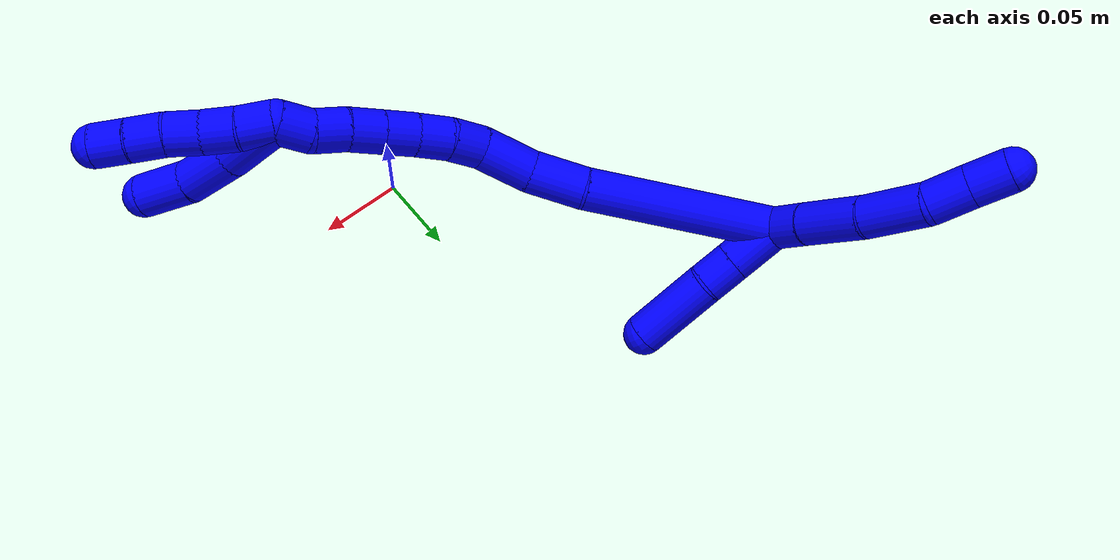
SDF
<sdf version="1.7">
 <world name="default">
  <model name="1">
   <static>0</static>
   <link name="1">
    <collision name="collision-cylinder-e_1_2_8">
     <pose>0.00226 0.003421 0.011406 -0.291426 0.187548 -0.027603</pose>
     <geometry><cylinder><radius>0.0125</radius><length>0.02424</length></cylinder></geometry>
     <surface>
      <friction><ode><mu>1.16</mu><mu2>1.16</mu2><slip1>0</slip1><slip2>0</slip2></ode></friction>
      <contact><ode><kp>1e+06</kp><kd>1</kd><max_vel>0</max_vel><min_depth>0.001</min_depth></ode></contact>
     </surface>
    </collision>
    <visual name="visual-cylinder-e_1_2_8">
     <pose>0.00226 0.003421 0.011406 -0.291426 0.187548 -0.027603</pose>
     <geometry><cylinder><radius>0.0125</radius><length>0.02424</length></cylinder></geometry>
     <material><ambient>0 0 1 1</ambient></material>
    </visual>
    <collision name="collision-cylinder-e_2_8_9">
     <pose>0.006936 0.01257 0.041662 -0.294959 0.12202 -0.018149</pose>
     <geometry><cylinder><radius>0.0125</radius><length>0.039698</length></cylinder></geometry>
     <surface>
      <friction><ode><mu>1.16</mu><mu2>1.16</mu2><slip1>0</slip1><slip2>0</slip2></ode></friction>
      <contact><ode><kp>1e+06</kp><kd>1</kd><max_vel>0</max_vel><min_depth>0.001</min_depth></ode></contact>
     </surface>
    </collision>
    <visual name="visual-cylinder-e_2_8_9">
     <pose>0.006936 0.01257 0.041662 -0.294959 0.12202 -0.018149</pose>
     <geometry><cylinder><radius>0.0125</radius><length>0.039698</length></cylinder></geometry>
     <material><ambient>0 0 1 1</ambient></material>
    </visual>
    <collision name="collision-cylinder-e_3_9_10">
     <pose>0.009455 0.022124 0.079303 -0.200947 0.005383 -0.000543</pose>
     <geometry><cylinder><radius>0.0125</radius><length>0.038353</length></cylinder></geometry>
     <surface>
      <friction><ode><mu>1.16</mu><mu2>1.16</mu2><slip1>0</slip1><slip2>0</slip2></ode></friction>
      <contact><ode><kp>1e+06</kp><kd>1</kd><max_vel>0</max_vel><min_depth>0.001</min_depth></ode></contact>
     </surface>
    </collision>
    <visual name="visual-cylinder-e_3_9_10">
     <pose>0.009455 0.022124 0.079303 -0.200947 0.005383 -0.000543</pose>
     <geometry><cylinder><radius>0.0125</radius><length>0.038353</length></cylinder></geometry>
     <material><ambient>0 0 1 1</ambient></material>
    </visual>
    <collision name="collision-cylinder-e_4_10_11">
     <pose>0.006926 0.025656 0.110028 0.024785 -0.216944 -0.002699</pose>
     <geometry><cylinder><radius>0.0125</radius><length>0.024451</length></cylinder></geometry>
     <surface>
      <friction><ode><mu>1.16</mu><mu2>1.16</mu2><slip1>0</slip1><slip2>0</slip2></ode></friction>
      <contact><ode><kp>1e+06</kp><kd>1</kd><max_vel>0</max_vel><min_depth>0.001</min_depth></ode></contact>
     </surface>
    </collision>
    <visual name="visual-cylinder-e_4_10_11">
     <pose>0.006926 0.025656 0.110028 0.024785 -0.216944 -0.002699</pose>
     <geometry><cylinder><radius>0.0125</radius><length>0.024451</length></cylinder></geometry>
     <material><ambient>0 0 1 1</ambient></material>
    </visual>
    <collision name="collision-cylinder-e_5_11_6">
     <pose>0.002055 0.025388 0.133375 -0.00246 -0.193798 0.000239</pose>
     <geometry><cylinder><radius>0.0125</radius><length>0.023257</length></cylinder></geometry>
     <surface>
      <friction><ode><mu>1.16</mu><mu2>1.16</mu2><slip1>0</slip1><slip2>0</slip2></ode></friction>
      <contact><ode><kp>1e+06</kp><kd>1</kd><max_vel>0</max_vel><min_depth>0.001</min_depth></ode></contact>
     </surface>
    </collision>
    <visual name="visual-cylinder-e_5_11_6">
     <pose>0.002055 0.025388 0.133375 -0.00246 -0.193798 0.000239</pose>
     <geometry><cylinder><radius>0.0125</radius><length>0.023257</length></cylinder></geometry>
     <material><ambient>0 0 1 1</ambient></material>
    </visual>
    <collision name="collision-cylinder-e_1_2_12">
     <pose>0.005718 0.005351 -0.013522 -2.76478 0.374634 -1.56485</pose>
     <geometry><cylinder><radius>0.0125</radius><length>0.031251</length></cylinder></geometry>
     <surface>
      <friction><ode><mu>1.16</mu><mu2>1.16</mu2><slip1>0</slip1><slip2>0</slip2></ode></friction>
      <contact><ode><kp>1e+06</kp><kd>1</kd><max_vel>0</max_vel><min_depth>0.001</min_depth></ode></contact>
     </surface>
    </collision>
    <visual name="visual-cylinder-e_1_2_12">
     <pose>0.005718 0.005351 -0.013522 -2.76478 0.374634 -1.56485</pose>
     <geometry><cylinder><radius>0.0125</radius><length>0.031251</length></cylinder></geometry>
     <material><ambient>0 0 1 1</ambient></material>
    </visual>
    <collision name="collision-cylinder-e_2_12_13">
     <pose>0.01517 0.014178 -0.03589 -2.76717 0.374271 -1.57039</pose>
     <geometry><cylinder><radius>0.0125</radius><length>0.020426</length></cylinder></geometry>
     <surface>
      <friction><ode><mu>1.16</mu><mu2>1.16</mu2><slip1>0</slip1><slip2>0</slip2></ode></friction>
      <contact><ode><kp>1e+06</kp><kd>1</kd><max_vel>0</max_vel><min_depth>0.001</min_depth></ode></contact>
     </surface>
    </collision>
    <visual name="visual-cylinder-e_2_12_13">
     <pose>0.01517 0.014178 -0.03589 -2.76717 0.374271 -1.57039</pose>
     <geometry><cylinder><radius>0.0125</radius><length>0.020426</length></cylinder></geometry>
     <material><ambient>0 0 1 1</ambient></material>
    </visual>
    <collision name="collision-cylinder-e_3_13_5">
     <pose>0.023992 0.025159 -0.067134 -2.81828 0.212205 -1.15707</pose>
     <geometry><cylinder><radius>0.0125</radius><length>0.048323</length></cylinder></geometry>
     <surface>
      <friction><ode><mu>1.16</mu><mu2>1.16</mu2><slip1>0</slip1><slip2>0</slip2></ode></friction>
      <contact><ode><kp>1e+06</kp><kd>1</kd><max_vel>0</max_vel><min_depth>0.001</min_depth></ode></contact>
     </surface>
    </collision>
    <visual name="visual-cylinder-e_3_13_5">
     <pose>0.023992 0.025159 -0.067134 -2.81828 0.212205 -1.15707</pose>
     <geometry><cylinder><radius>0.0125</radius><length>0.048323</length></cylinder></geometry>
     <material><ambient>0 0 1 1</ambient></material>
    </visual>
    <collision name="collision-cylinder-e_1_2_14">
     <pose>0.040869 -0.024186 -0.032321 2.49916 0.791557 1.79656</pose>
     <geometry><cylinder><radius>0.0125</radius><length>0.114889</length></cylinder></geometry>
     <surface>
      <friction><ode><mu>1.16</mu><mu2>1.16</mu2><slip1>0</slip1><slip2>0</slip2></ode></friction>
      <contact><ode><kp>1e+06</kp><kd>1</kd><max_vel>0</max_vel><min_depth>0.001</min_depth></ode></contact>
     </surface>
    </collision>
    <visual name="visual-cylinder-e_1_2_14">
     <pose>0.040869 -0.024186 -0.032321 2.49916 0.791557 1.79656</pose>
     <geometry><cylinder><radius>0.0125</radius><length>0.114889</length></cylinder></geometry>
     <material><ambient>0 0 1 1</ambient></material>
    </visual>
    <collision name="collision-cylinder-e_2_14_15">
     <pose>0.091678 -0.057185 -0.0741 2.39154 0.655509 1.42484</pose>
     <geometry><cylinder><radius>0.0125</radius><length>0.032615</length></cylinder></geometry>
     <surface>
      <friction><ode><mu>1.16</mu><mu2>1.16</mu2><slip1>0</slip1><slip2>0</slip2></ode></friction>
      <contact><ode><kp>1e+06</kp><kd>1</kd><max_vel>0</max_vel><min_depth>0.001</min_depth></ode></contact>
     </surface>
    </collision>
    <visual name="visual-cylinder-e_2_14_15">
     <pose>0.091678 -0.057185 -0.0741 2.39154 0.655509 1.42484</pose>
     <geometry><cylinder><radius>0.0125</radius><length>0.032615</length></cylinder></geometry>
     <material><ambient>0 0 1 1</ambient></material>
    </visual>
    <collision name="collision-cylinder-e_3_15_16">
     <pose>0.113107 -0.075386 -0.089575 2.14075 0.800314 1.31672</pose>
     <geometry><cylinder><radius>0.0125</radius><length>0.032021</length></cylinder></geometry>
     <surface>
      <friction><ode><mu>1.16</mu><mu2>1.16</mu2><slip1>0</slip1><slip2>0</slip2></ode></friction>
      <contact><ode><kp>1e+06</kp><kd>1</kd><max_vel>0</max_vel><min_depth>0.001</min_depth></ode></contact>
     </surface>
    </collision>
    <visual name="visual-cylinder-e_3_15_16">
     <pose>0.113107 -0.075386 -0.089575 2.14075 0.800314 1.31672</pose>
     <geometry><cylinder><radius>0.0125</radius><length>0.032021</length></cylinder></geometry>
     <material><ambient>0 0 1 1</ambient></material>
    </visual>
    <collision name="collision-cylinder-e_4_16_17">
     <pose>0.133764 -0.088071 -0.09868 2.32346 1.11307 1.9244</pose>
     <geometry><cylinder><radius>0.0125</radius><length>0.02044</length></cylinder></geometry>
     <surface>
      <friction><ode><mu>1.16</mu><mu2>1.16</mu2><slip1>0</slip1><slip2>0</slip2></ode></friction>
      <contact><ode><kp>1e+06</kp><kd>1</kd><max_vel>0</max_vel><min_depth>0.001</min_depth></ode></contact>
     </surface>
    </collision>
    <visual name="visual-cylinder-e_4_16_17">
     <pose>0.133764 -0.088071 -0.09868 2.32346 1.11307 1.9244</pose>
     <geometry><cylinder><radius>0.0125</radius><length>0.02044</length></cylinder></geometry>
     <material><ambient>0 0 1 1</ambient></material>
    </visual>
    <collision name="collision-cylinder-e_5_17_18">
     <pose>0.151429 -0.094012 -0.106328 2.61606 1.01543 2.24091</pose>
     <geometry><cylinder><radius>0.0125</radius><length>0.020001</length></cylinder></geometry>
     <surface>
      <friction><ode><mu>1.16</mu><mu2>1.16</mu2><slip1>0</slip1><slip2>0</slip2></ode></friction>
      <contact><ode><kp>1e+06</kp><kd>1</kd><max_vel>0</max_vel><min_depth>0.001</min_depth></ode></contact>
     </surface>
    </collision>
    <visual name="visual-cylinder-e_5_17_18">
     <pose>0.151429 -0.094012 -0.106328 2.61606 1.01543 2.24091</pose>
     <geometry><cylinder><radius>0.0125</radius><length>0.020001</length></cylinder></geometry>
     <material><ambient>0 0 1 1</ambient></material>
    </visual>
    <collision name="collision-cylinder-e_6_18_19">
     <pose>0.168746 -0.098687 -0.115154 2.69751 1.07914 2.42056</pose>
     <geometry><cylinder><radius>0.0125</radius><length>0.020008</length></cylinder></geometry>
     <surface>
      <friction><ode><mu>1.16</mu><mu2>1.16</mu2><slip1>0</slip1><slip2>0</slip2></ode></friction>
      <contact><ode><kp>1e+06</kp><kd>1</kd><max_vel>0</max_vel><min_depth>0.001</min_depth></ode></contact>
     </surface>
    </collision>
    <visual name="visual-cylinder-e_6_18_19">
     <pose>0.168746 -0.098687 -0.115154 2.69751 1.07914 2.42056</pose>
     <geometry><cylinder><radius>0.0125</radius><length>0.020008</length></cylinder></geometry>
     <material><ambient>0 0 1 1</ambient></material>
    </visual>
    <collision name="collision-cylinder-e_7_19_20">
     <pose>0.186379 -0.102726 -0.123698 2.70252 1.07844 2.42774</pose>
     <geometry><cylinder><radius>0.0125</radius><length>0.020005</length></cylinder></geometry>
     <surface>
      <friction><ode><mu>1.16</mu><mu2>1.16</mu2><slip1>0</slip1><slip2>0</slip2></ode></friction>
      <contact><ode><kp>1e+06</kp><kd>1</kd><max_vel>0</max_vel><min_depth>0.001</min_depth></ode></contact>
     </surface>
    </collision>
    <visual name="visual-cylinder-e_7_19_20">
     <pose>0.186379 -0.102726 -0.123698 2.70252 1.07844 2.42774</pose>
     <geometry><cylinder><radius>0.0125</radius><length>0.020005</length></cylinder></geometry>
     <material><ambient>0 0 1 1</ambient></material>
    </visual>
    <collision name="collision-cylinder-e_8_20_21">
     <pose>0.203984 -0.10552 -0.132698 2.97692 1.0724 2.86563</pose>
     <geometry><cylinder><radius>0.0125</radius><length>0.020016</length></cylinder></geometry>
     <surface>
      <friction><ode><mu>1.16</mu><mu2>1.16</mu2><slip1>0</slip1><slip2>0</slip2></ode></friction>
      <contact><ode><kp>1e+06</kp><kd>1</kd><max_vel>0</max_vel><min_depth>0.001</min_depth></ode></contact>
     </surface>
    </collision>
    <visual name="visual-cylinder-e_8_20_21">
     <pose>0.203984 -0.10552 -0.132698 2.97692 1.0724 2.86563</pose>
     <geometry><cylinder><radius>0.0125</radius><length>0.020016</length></cylinder></geometry>
     <material><ambient>0 0 1 1</ambient></material>
    </visual>
    <collision name="collision-cylinder-e_9_21_1">
     <pose>0.221201 -0.110136 -0.141208 2.35074 1.00165 1.83859</pose>
     <geometry><cylinder><radius>0.0125</radius><length>0.020005</length></cylinder></geometry>
     <surface>
      <friction><ode><mu>1.16</mu><mu2>1.16</mu2><slip1>0</slip1><slip2>0</slip2></ode></friction>
      <contact><ode><kp>1e+06</kp><kd>1</kd><max_vel>0</max_vel><min_depth>0.001</min_depth></ode></contact>
     </surface>
    </collision>
    <visual name="visual-cylinder-e_9_21_1">
     <pose>0.221201 -0.110136 -0.141208 2.35074 1.00165 1.83859</pose>
     <geometry><cylinder><radius>0.0125</radius><length>0.020005</length></cylinder></geometry>
     <material><ambient>0 0 1 1</ambient></material>
    </visual>
    <collision name="collision-cylinder-e_1_1_22">
     <pose>0.230147 -0.11219 -0.163843 -3.0475 0.027502 -0.568369</pose>
     <geometry><cylinder><radius>0.0125</radius><length>0.03787</length></cylinder></geometry>
     <surface>
      <friction><ode><mu>1.16</mu><mu2>1.16</mu2><slip1>0</slip1><slip2>0</slip2></ode></friction>
      <contact><ode><kp>1e+06</kp><kd>1</kd><max_vel>0</max_vel><min_depth>0.001</min_depth></ode></contact>
     </surface>
    </collision>
    <visual name="visual-cylinder-e_1_1_22">
     <pose>0.230147 -0.11219 -0.163843 -3.0475 0.027502 -0.568369</pose>
     <geometry><cylinder><radius>0.0125</radius><length>0.03787</length></cylinder></geometry>
     <material><ambient>0 0 1 1</ambient></material>
    </visual>
    <collision name="collision-cylinder-e_2_22_23">
     <pose>0.232952 -0.109369 -0.19838 -3.07525 0.14426 -2.28057</pose>
     <geometry><cylinder><radius>0.0125</radius><length>0.031785</length></cylinder></geometry>
     <surface>
      <friction><ode><mu>1.16</mu><mu2>1.16</mu2><slip1>0</slip1><slip2>0</slip2></ode></friction>
      <contact><ode><kp>1e+06</kp><kd>1</kd><max_vel>0</max_vel><min_depth>0.001</min_depth></ode></contact>
     </surface>
    </collision>
    <visual name="visual-cylinder-e_2_22_23">
     <pose>0.232952 -0.109369 -0.19838 -3.07525 0.14426 -2.28057</pose>
     <geometry><cylinder><radius>0.0125</radius><length>0.031785</length></cylinder></geometry>
     <material><ambient>0 0 1 1</ambient></material>
    </visual>
    <collision name="collision-cylinder-e_3_23_4">
     <pose>0.239813 -0.10983 -0.22846 3.03749 0.306373 2.49072</pose>
     <geometry><cylinder><radius>0.0125</radius><length>0.030345</length></cylinder></geometry>
     <surface>
      <friction><ode><mu>1.16</mu><mu2>1.16</mu2><slip1>0</slip1><slip2>0</slip2></ode></friction>
      <contact><ode><kp>1e+06</kp><kd>1</kd><max_vel>0</max_vel><min_depth>0.001</min_depth></ode></contact>
     </surface>
    </collision>
    <visual name="visual-cylinder-e_3_23_4">
     <pose>0.239813 -0.10983 -0.22846 3.03749 0.306373 2.49072</pose>
     <geometry><cylinder><radius>0.0125</radius><length>0.030345</length></cylinder></geometry>
     <material><ambient>0 0 1 1</ambient></material>
    </visual>
    <collision name="collision-cylinder-e_1_1_24">
     <pose>0.235595 -0.115019 -0.152953 3.01033 0.639595 2.74976</pose>
     <geometry><cylinder><radius>0.0125</radius><length>0.02</length></cylinder></geometry>
     <surface>
      <friction><ode><mu>1.16</mu><mu2>1.16</mu2><slip1>0</slip1><slip2>0</slip2></ode></friction>
      <contact><ode><kp>1e+06</kp><kd>1</kd><max_vel>0</max_vel><min_depth>0.001</min_depth></ode></contact>
     </surface>
    </collision>
    <visual name="visual-cylinder-e_1_1_24">
     <pose>0.235595 -0.115019 -0.152953 3.01033 0.639595 2.74976</pose>
     <geometry><cylinder><radius>0.0125</radius><length>0.02</length></cylinder></geometry>
     <material><ambient>0 0 1 1</ambient></material>
    </visual>
    <collision name="collision-cylinder-e_2_24_25">
     <pose>0.246781 -0.118225 -0.169161 2.88605 0.548887 2.28542</pose>
     <geometry><cylinder><radius>0.0125</radius><length>0.02</length></cylinder></geometry>
     <surface>
      <friction><ode><mu>1.16</mu><mu2>1.16</mu2><slip1>0</slip1><slip2>0</slip2></ode></friction>
      <contact><ode><kp>1e+06</kp><kd>1</kd><max_vel>0</max_vel><min_depth>0.001</min_depth></ode></contact>
     </surface>
    </collision>
    <visual name="visual-cylinder-e_2_24_25">
     <pose>0.246781 -0.118225 -0.169161 2.88605 0.548887 2.28542</pose>
     <geometry><cylinder><radius>0.0125</radius><length>0.02</length></cylinder></geometry>
     <material><ambient>0 0 1 1</ambient></material>
    </visual>
    <collision name="collision-cylinder-e_3_25_26">
     <pose>0.258456 -0.122528 -0.184743 2.85664 0.702026 2.39486</pose>
     <geometry><cylinder><radius>0.0125</radius><length>0.02</length></cylinder></geometry>
     <surface>
      <friction><ode><mu>1.16</mu><mu2>1.16</mu2><slip1>0</slip1><slip2>0</slip2></ode></friction>
      <contact><ode><kp>1e+06</kp><kd>1</kd><max_vel>0</max_vel><min_depth>0.001</min_depth></ode></contact>
     </surface>
    </collision>
    <visual name="visual-cylinder-e_3_25_26">
     <pose>0.258456 -0.122528 -0.184743 2.85664 0.702026 2.39486</pose>
     <geometry><cylinder><radius>0.0125</radius><length>0.02</length></cylinder></geometry>
     <material><ambient>0 0 1 1</ambient></material>
    </visual>
    <collision name="collision-cylinder-e_4_26_27">
     <pose>0.270535 -0.126088 -0.200219 2.96989 0.597004 2.59612</pose>
     <geometry><cylinder><radius>0.0125</radius><length>0.02</length></cylinder></geometry>
     <surface>
      <friction><ode><mu>1.16</mu><mu2>1.16</mu2><slip1>0</slip1><slip2>0</slip2></ode></friction>
      <contact><ode><kp>1e+06</kp><kd>1</kd><max_vel>0</max_vel><min_depth>0.001</min_depth></ode></contact>
     </surface>
    </collision>
    <visual name="visual-cylinder-e_4_26_27">
     <pose>0.270535 -0.126088 -0.200219 2.96989 0.597004 2.59612</pose>
     <geometry><cylinder><radius>0.0125</radius><length>0.02</length></cylinder></geometry>
     <material><ambient>0 0 1 1</ambient></material>
    </visual>
    <collision name="collision-cylinder-e_5_27_3">
     <pose>0.280984 -0.129288 -0.216941 2.93608 0.503675 2.37924</pose>
     <geometry><cylinder><radius>0.0125</radius><length>0.02</length></cylinder></geometry>
     <surface>
      <friction><ode><mu>1.16</mu><mu2>1.16</mu2><slip1>0</slip1><slip2>0</slip2></ode></friction>
      <contact><ode><kp>1e+06</kp><kd>1</kd><max_vel>0</max_vel><min_depth>0.001</min_depth></ode></contact>
     </surface>
    </collision>
    <visual name="visual-cylinder-e_5_27_3">
     <pose>0.280984 -0.129288 -0.216941 2.93608 0.503675 2.37924</pose>
     <geometry><cylinder><radius>0.0125</radius><length>0.02</length></cylinder></geometry>
     <material><ambient>0 0 1 1</ambient></material>
    </visual>
    <collision name="collision-sphere-3">
     <pose>0.28581 -0.131075 -0.225515 0 -0 0</pose>
     <geometry><sphere><radius>0.0125</radius></sphere></geometry>
     <surface>
      <friction><ode><mu>1.16</mu><mu2>1.16</mu2><slip1>0</slip1><slip2>0</slip2></ode></friction>
      <contact><ode><kp>1e+06</kp><kd>1</kd><max_vel>0</max_vel><min_depth>0.001</min_depth></ode></contact>
     </surface>
    </collision>
    <visual name="visual-sphere-3">
     <pose>0.28581 -0.131075 -0.225515 0 -0 0</pose>
     <geometry><sphere><radius>0.0125</radius></sphere></geometry>
     <material><ambient>0 0 1 1</ambient></material>
    </visual>
    <collision name="collision-sphere-27">
     <pose>0.276157 -0.127501 -0.208367 0 -0 0</pose>
     <geometry><sphere><radius>0.0125</radius></sphere></geometry>
     <surface>
      <friction><ode><mu>1.16</mu><mu2>1.16</mu2><slip1>0</slip1><slip2>0</slip2></ode></friction>
      <contact><ode><kp>1e+06</kp><kd>1</kd><max_vel>0</max_vel><min_depth>0.001</min_depth></ode></contact>
     </surface>
    </collision>
    <visual name="visual-sphere-27">
     <pose>0.276157 -0.127501 -0.208367 0 -0 0</pose>
     <geometry><sphere><radius>0.0125</radius></sphere></geometry>
     <material><ambient>0 0 1 1</ambient></material>
    </visual>
    <collision name="collision-sphere-26">
     <pose>0.264914 -0.124675 -0.19207 0 -0 0</pose>
     <geometry><sphere><radius>0.0125</radius></sphere></geometry>
     <surface>
      <friction><ode><mu>1.16</mu><mu2>1.16</mu2><slip1>0</slip1><slip2>0</slip2></ode></friction>
      <contact><ode><kp>1e+06</kp><kd>1</kd><max_vel>0</max_vel><min_depth>0.001</min_depth></ode></contact>
     </surface>
    </collision>
    <visual name="visual-sphere-26">
     <pose>0.264914 -0.124675 -0.19207 0 -0 0</pose>
     <geometry><sphere><radius>0.0125</radius></sphere></geometry>
     <material><ambient>0 0 1 1</ambient></material>
    </visual>
    <collision name="collision-sphere-25">
     <pose>0.251998 -0.120382 -0.177415 0 -0 0</pose>
     <geometry><sphere><radius>0.0125</radius></sphere></geometry>
     <surface>
      <friction><ode><mu>1.16</mu><mu2>1.16</mu2><slip1>0</slip1><slip2>0</slip2></ode></friction>
      <contact><ode><kp>1e+06</kp><kd>1</kd><max_vel>0</max_vel><min_depth>0.001</min_depth></ode></contact>
     </surface>
    </collision>
    <visual name="visual-sphere-25">
     <pose>0.251998 -0.120382 -0.177415 0 -0 0</pose>
     <geometry><sphere><radius>0.0125</radius></sphere></geometry>
     <material><ambient>0 0 1 1</ambient></material>
    </visual>
    <collision name="collision-sphere-24">
     <pose>0.241564 -0.116069 -0.160907 0 -0 0</pose>
     <geometry><sphere><radius>0.0125</radius></sphere></geometry>
     <surface>
      <friction><ode><mu>1.16</mu><mu2>1.16</mu2><slip1>0</slip1><slip2>0</slip2></ode></friction>
      <contact><ode><kp>1e+06</kp><kd>1</kd><max_vel>0</max_vel><min_depth>0.001</min_depth></ode></contact>
     </surface>
    </collision>
    <visual name="visual-sphere-24">
     <pose>0.241564 -0.116069 -0.160907 0 -0 0</pose>
     <geometry><sphere><radius>0.0125</radius></sphere></geometry>
     <material><ambient>0 0 1 1</ambient></material>
    </visual>
    <collision name="collision-sphere-4">
     <pose>0.244389 -0.111333 -0.242848 0 -0 0</pose>
     <geometry><sphere><radius>0.0125</radius></sphere></geometry>
     <surface>
      <friction><ode><mu>1.16</mu><mu2>1.16</mu2><slip1>0</slip1><slip2>0</slip2></ode></friction>
      <contact><ode><kp>1e+06</kp><kd>1</kd><max_vel>0</max_vel><min_depth>0.001</min_depth></ode></contact>
     </surface>
    </collision>
    <visual name="visual-sphere-4">
     <pose>0.244389 -0.111333 -0.242848 0 -0 0</pose>
     <geometry><sphere><radius>0.0125</radius></sphere></geometry>
     <material><ambient>0 0 1 1</ambient></material>
    </visual>
    <collision name="collision-sphere-23">
     <pose>0.235237 -0.108327 -0.214073 0 -0 0</pose>
     <geometry><sphere><radius>0.0125</radius></sphere></geometry>
     <surface>
      <friction><ode><mu>1.16</mu><mu2>1.16</mu2><slip1>0</slip1><slip2>0</slip2></ode></friction>
      <contact><ode><kp>1e+06</kp><kd>1</kd><max_vel>0</max_vel><min_depth>0.001</min_depth></ode></contact>
     </surface>
    </collision>
    <visual name="visual-sphere-23">
     <pose>0.235237 -0.108327 -0.214073 0 -0 0</pose>
     <geometry><sphere><radius>0.0125</radius></sphere></geometry>
     <material><ambient>0 0 1 1</ambient></material>
    </visual>
    <collision name="collision-sphere-22">
     <pose>0.230668 -0.110412 -0.182687 0 -0 0</pose>
     <geometry><sphere><radius>0.0125</radius></sphere></geometry>
     <surface>
      <friction><ode><mu>1.16</mu><mu2>1.16</mu2><slip1>0</slip1><slip2>0</slip2></ode></friction>
      <contact><ode><kp>1e+06</kp><kd>1</kd><max_vel>0</max_vel><min_depth>0.001</min_depth></ode></contact>
     </surface>
    </collision>
    <visual name="visual-sphere-22">
     <pose>0.230668 -0.110412 -0.182687 0 -0 0</pose>
     <geometry><sphere><radius>0.0125</radius></sphere></geometry>
     <material><ambient>0 0 1 1</ambient></material>
    </visual>
    <collision name="collision-sphere-1">
     <pose>0.229626 -0.113969 -0.144998 0 -0 0</pose>
     <geometry><sphere><radius>0.0125</radius></sphere></geometry>
     <surface>
      <friction><ode><mu>1.16</mu><mu2>1.16</mu2><slip1>0</slip1><slip2>0</slip2></ode></friction>
      <contact><ode><kp>1e+06</kp><kd>1</kd><max_vel>0</max_vel><min_depth>0.001</min_depth></ode></contact>
     </surface>
    </collision>
    <visual name="visual-sphere-1">
     <pose>0.229626 -0.113969 -0.144998 0 -0 0</pose>
     <geometry><sphere><radius>0.0125</radius></sphere></geometry>
     <material><ambient>0 0 1 1</ambient></material>
    </visual>
    <collision name="collision-sphere-21">
     <pose>0.212775 -0.106304 -0.137417 0 -0 0</pose>
     <geometry><sphere><radius>0.0125</radius></sphere></geometry>
     <surface>
      <friction><ode><mu>1.16</mu><mu2>1.16</mu2><slip1>0</slip1><slip2>0</slip2></ode></friction>
      <contact><ode><kp>1e+06</kp><kd>1</kd><max_vel>0</max_vel><min_depth>0.001</min_depth></ode></contact>
     </surface>
    </collision>
    <visual name="visual-sphere-21">
     <pose>0.212775 -0.106304 -0.137417 0 -0 0</pose>
     <geometry><sphere><radius>0.0125</radius></sphere></geometry>
     <material><ambient>0 0 1 1</ambient></material>
    </visual>
    <collision name="collision-sphere-6">
     <pose>-0.000184 0.025416 0.144786 0 -0 0</pose>
     <geometry><sphere><radius>0.0125</radius></sphere></geometry>
     <surface>
      <friction><ode><mu>1.16</mu><mu2>1.16</mu2><slip1>0</slip1><slip2>0</slip2></ode></friction>
      <contact><ode><kp>1e+06</kp><kd>1</kd><max_vel>0</max_vel><min_depth>0.001</min_depth></ode></contact>
     </surface>
    </collision>
    <visual name="visual-sphere-6">
     <pose>-0.000184 0.025416 0.144786 0 -0 0</pose>
     <geometry><sphere><radius>0.0125</radius></sphere></geometry>
     <material><ambient>0 0 1 1</ambient></material>
    </visual>
    <collision name="collision-sphere-11">
     <pose>0.004295 0.02536 0.121964 0 -0 0</pose>
     <geometry><sphere><radius>0.0125</radius></sphere></geometry>
     <surface>
      <friction><ode><mu>1.16</mu><mu2>1.16</mu2><slip1>0</slip1><slip2>0</slip2></ode></friction>
      <contact><ode><kp>1e+06</kp><kd>1</kd><max_vel>0</max_vel><min_depth>0.001</min_depth></ode></contact>
     </surface>
    </collision>
    <visual name="visual-sphere-11">
     <pose>0.004295 0.02536 0.121964 0 -0 0</pose>
     <geometry><sphere><radius>0.0125</radius></sphere></geometry>
     <material><ambient>0 0 1 1</ambient></material>
    </visual>
    <collision name="collision-sphere-10">
     <pose>0.009558 0.025952 0.098093 0 -0 0</pose>
     <geometry><sphere><radius>0.0125</radius></sphere></geometry>
     <surface>
      <friction><ode><mu>1.16</mu><mu2>1.16</mu2><slip1>0</slip1><slip2>0</slip2></ode></friction>
      <contact><ode><kp>1e+06</kp><kd>1</kd><max_vel>0</max_vel><min_depth>0.001</min_depth></ode></contact>
     </surface>
    </collision>
    <visual name="visual-sphere-10">
     <pose>0.009558 0.025952 0.098093 0 -0 0</pose>
     <geometry><sphere><radius>0.0125</radius></sphere></geometry>
     <material><ambient>0 0 1 1</ambient></material>
    </visual>
    <collision name="collision-sphere-9">
     <pose>0.009352 0.018297 0.060512 0 -0 0</pose>
     <geometry><sphere><radius>0.0125</radius></sphere></geometry>
     <surface>
      <friction><ode><mu>1.16</mu><mu2>1.16</mu2><slip1>0</slip1><slip2>0</slip2></ode></friction>
      <contact><ode><kp>1e+06</kp><kd>1</kd><max_vel>0</max_vel><min_depth>0.001</min_depth></ode></contact>
     </surface>
    </collision>
    <visual name="visual-sphere-9">
     <pose>0.009352 0.018297 0.060512 0 -0 0</pose>
     <geometry><sphere><radius>0.0125</radius></sphere></geometry>
     <material><ambient>0 0 1 1</ambient></material>
    </visual>
    <collision name="collision-sphere-2">
     <geometry><sphere><radius>0.0125</radius></sphere></geometry>
     <surface>
      <friction><ode><mu>1.16</mu><mu2>1.16</mu2><slip1>0</slip1><slip2>0</slip2></ode></friction>
      <contact><ode><kp>1e+06</kp><kd>1</kd><max_vel>0</max_vel><min_depth>0.001</min_depth></ode></contact>
     </surface>
    </collision>
    <visual name="visual-sphere-2">
     <geometry><sphere><radius>0.0125</radius></sphere></geometry>
     <material><ambient>0 0 1 1</ambient></material>
    </visual>
    <collision name="collision-sphere-19">
     <pose>0.177565 -0.100716 -0.119419 0 -0 0</pose>
     <geometry><sphere><radius>0.0125</radius></sphere></geometry>
     <surface>
      <friction><ode><mu>1.16</mu><mu2>1.16</mu2><slip1>0</slip1><slip2>0</slip2></ode></friction>
      <contact><ode><kp>1e+06</kp><kd>1</kd><max_vel>0</max_vel><min_depth>0.001</min_depth></ode></contact>
     </surface>
    </collision>
    <visual name="visual-sphere-19">
     <pose>0.177565 -0.100716 -0.119419 0 -0 0</pose>
     <geometry><sphere><radius>0.0125</radius></sphere></geometry>
     <material><ambient>0 0 1 1</ambient></material>
    </visual>
    <collision name="collision-sphere-8">
     <pose>0.00452 0.006843 0.022811 0 -0 0</pose>
     <geometry><sphere><radius>0.0125</radius></sphere></geometry>
     <surface>
      <friction><ode><mu>1.16</mu><mu2>1.16</mu2><slip1>0</slip1><slip2>0</slip2></ode></friction>
      <contact><ode><kp>1e+06</kp><kd>1</kd><max_vel>0</max_vel><min_depth>0.001</min_depth></ode></contact>
     </surface>
    </collision>
    <visual name="visual-sphere-8">
     <pose>0.00452 0.006843 0.022811 0 -0 0</pose>
     <geometry><sphere><radius>0.0125</radius></sphere></geometry>
     <material><ambient>0 0 1 1</ambient></material>
    </visual>
    <collision name="collision-sphere-12">
     <pose>0.011436 0.010702 -0.027043 0 -0 0</pose>
     <geometry><sphere><radius>0.0125</radius></sphere></geometry>
     <surface>
      <friction><ode><mu>1.16</mu><mu2>1.16</mu2><slip1>0</slip1><slip2>0</slip2></ode></friction>
      <contact><ode><kp>1e+06</kp><kd>1</kd><max_vel>0</max_vel><min_depth>0.001</min_depth></ode></contact>
     </surface>
    </collision>
    <visual name="visual-sphere-12">
     <pose>0.011436 0.010702 -0.027043 0 -0 0</pose>
     <geometry><sphere><radius>0.0125</radius></sphere></geometry>
     <material><ambient>0 0 1 1</ambient></material>
    </visual>
    <collision name="collision-sphere-13">
     <pose>0.018903 0.017655 -0.044738 0 -0 0</pose>
     <geometry><sphere><radius>0.0125</radius></sphere></geometry>
     <surface>
      <friction><ode><mu>1.16</mu><mu2>1.16</mu2><slip1>0</slip1><slip2>0</slip2></ode></friction>
      <contact><ode><kp>1e+06</kp><kd>1</kd><max_vel>0</max_vel><min_depth>0.001</min_depth></ode></contact>
     </surface>
    </collision>
    <visual name="visual-sphere-13">
     <pose>0.018903 0.017655 -0.044738 0 -0 0</pose>
     <geometry><sphere><radius>0.0125</radius></sphere></geometry>
     <material><ambient>0 0 1 1</ambient></material>
    </visual>
    <collision name="collision-sphere-5">
     <pose>0.029081 0.032663 -0.089529 0 -0 0</pose>
     <geometry><sphere><radius>0.0125</radius></sphere></geometry>
     <surface>
      <friction><ode><mu>1.16</mu><mu2>1.16</mu2><slip1>0</slip1><slip2>0</slip2></ode></friction>
      <contact><ode><kp>1e+06</kp><kd>1</kd><max_vel>0</max_vel><min_depth>0.001</min_depth></ode></contact>
     </surface>
    </collision>
    <visual name="visual-sphere-5">
     <pose>0.029081 0.032663 -0.089529 0 -0 0</pose>
     <geometry><sphere><radius>0.0125</radius></sphere></geometry>
     <material><ambient>0 0 1 1</ambient></material>
    </visual>
    <collision name="collision-sphere-14">
     <pose>0.081738 -0.048373 -0.064641 0 -0 0</pose>
     <geometry><sphere><radius>0.0125</radius></sphere></geometry>
     <surface>
      <friction><ode><mu>1.16</mu><mu2>1.16</mu2><slip1>0</slip1><slip2>0</slip2></ode></friction>
      <contact><ode><kp>1e+06</kp><kd>1</kd><max_vel>0</max_vel><min_depth>0.001</min_depth></ode></contact>
     </surface>
    </collision>
    <visual name="visual-sphere-14">
     <pose>0.081738 -0.048373 -0.064641 0 -0 0</pose>
     <geometry><sphere><radius>0.0125</radius></sphere></geometry>
     <material><ambient>0 0 1 1</ambient></material>
    </visual>
    <collision name="collision-sphere-15">
     <pose>0.101618 -0.065998 -0.083558 0 -0 0</pose>
     <geometry><sphere><radius>0.0125</radius></sphere></geometry>
     <surface>
      <friction><ode><mu>1.16</mu><mu2>1.16</mu2><slip1>0</slip1><slip2>0</slip2></ode></friction>
      <contact><ode><kp>1e+06</kp><kd>1</kd><max_vel>0</max_vel><min_depth>0.001</min_depth></ode></contact>
     </surface>
    </collision>
    <visual name="visual-sphere-15">
     <pose>0.101618 -0.065998 -0.083558 0 -0 0</pose>
     <geometry><sphere><radius>0.0125</radius></sphere></geometry>
     <material><ambient>0 0 1 1</ambient></material>
    </visual>
    <collision name="collision-sphere-16">
     <pose>0.124596 -0.084775 -0.095592 0 -0 0</pose>
     <geometry><sphere><radius>0.0125</radius></sphere></geometry>
     <surface>
      <friction><ode><mu>1.16</mu><mu2>1.16</mu2><slip1>0</slip1><slip2>0</slip2></ode></friction>
      <contact><ode><kp>1e+06</kp><kd>1</kd><max_vel>0</max_vel><min_depth>0.001</min_depth></ode></contact>
     </surface>
    </collision>
    <visual name="visual-sphere-16">
     <pose>0.124596 -0.084775 -0.095592 0 -0 0</pose>
     <geometry><sphere><radius>0.0125</radius></sphere></geometry>
     <material><ambient>0 0 1 1</ambient></material>
    </visual>
    <collision name="collision-sphere-17">
     <pose>0.142932 -0.091367 -0.101767 0 -0 0</pose>
     <geometry><sphere><radius>0.0125</radius></sphere></geometry>
     <surface>
      <friction><ode><mu>1.16</mu><mu2>1.16</mu2><slip1>0</slip1><slip2>0</slip2></ode></friction>
      <contact><ode><kp>1e+06</kp><kd>1</kd><max_vel>0</max_vel><min_depth>0.001</min_depth></ode></contact>
     </surface>
    </collision>
    <visual name="visual-sphere-17">
     <pose>0.142932 -0.091367 -0.101767 0 -0 0</pose>
     <geometry><sphere><radius>0.0125</radius></sphere></geometry>
     <material><ambient>0 0 1 1</ambient></material>
    </visual>
    <collision name="collision-sphere-18">
     <pose>0.159926 -0.096658 -0.110889 0 -0 0</pose>
     <geometry><sphere><radius>0.0125</radius></sphere></geometry>
     <surface>
      <friction><ode><mu>1.16</mu><mu2>1.16</mu2><slip1>0</slip1><slip2>0</slip2></ode></friction>
      <contact><ode><kp>1e+06</kp><kd>1</kd><max_vel>0</max_vel><min_depth>0.001</min_depth></ode></contact>
     </surface>
    </collision>
    <visual name="visual-sphere-18">
     <pose>0.159926 -0.096658 -0.110889 0 -0 0</pose>
     <geometry><sphere><radius>0.0125</radius></sphere></geometry>
     <material><ambient>0 0 1 1</ambient></material>
    </visual>
    <collision name="collision-sphere-20">
     <pose>0.195194 -0.104736 -0.127978 0 -0 0</pose>
     <geometry><sphere><radius>0.0125</radius></sphere></geometry>
     <surface>
      <friction><ode><mu>1.16</mu><mu2>1.16</mu2><slip1>0</slip1><slip2>0</slip2></ode></friction>
      <contact><ode><kp>1e+06</kp><kd>1</kd><max_vel>0</max_vel><min_depth>0.001</min_depth></ode></contact>
     </surface>
    </collision>
    <visual name="visual-sphere-20">
     <pose>0.195194 -0.104736 -0.127978 0 -0 0</pose>
     <geometry><sphere><radius>0.0125</radius></sphere></geometry>
     <material><ambient>0 0 1 1</ambient></material>
    </visual>
    <inertial>
     <pose>0.112647 -0.050724 -0.07328 0 -0 0</pose>
     <mass>0.75</mass>
     <inertia>
      <ixx>0.000105</ixx>
      <ixy>0</ixy>
      <ixz>0</ixz>
      <iyy>0.000188</iyy>
      <iyz>0</iyz>
      <izz>-8.4e-05</izz>
     </inertia>
    </inertial>
   </link>
   <pose>-0.141675 0.193101 0.059323 -0.355622 -0.781799 -0.11508</pose>
  </model>
 </world>
</sdf>
